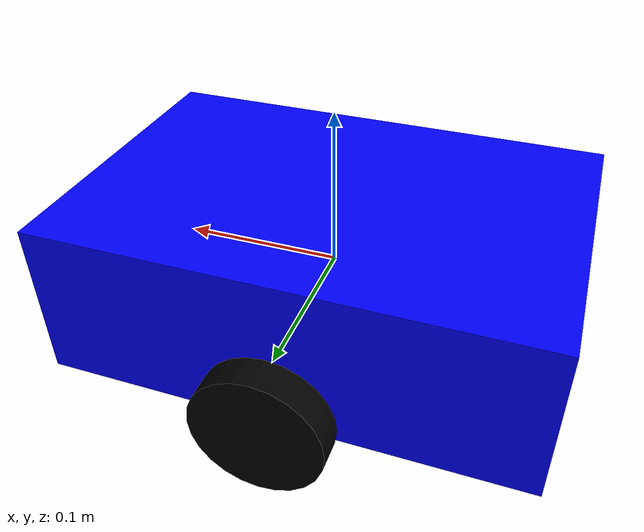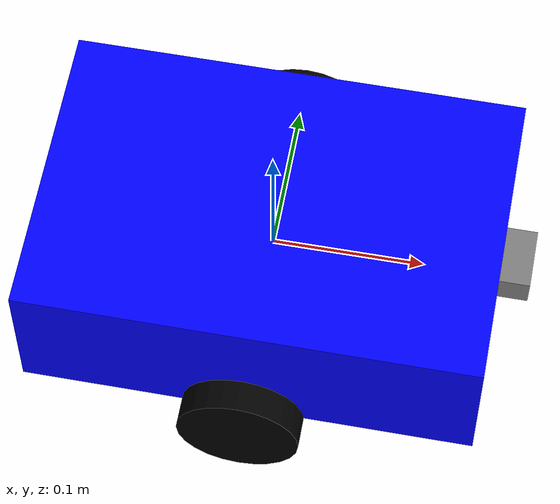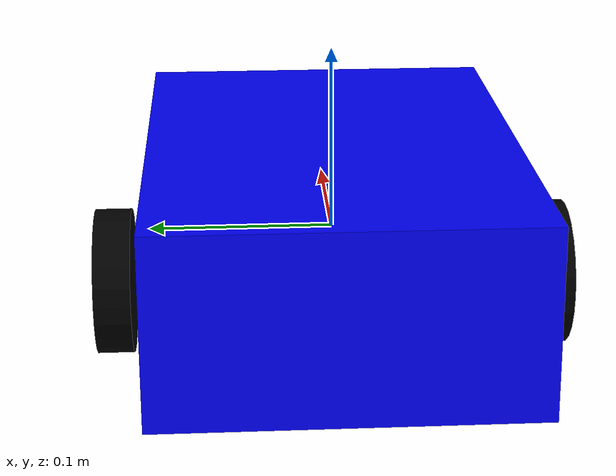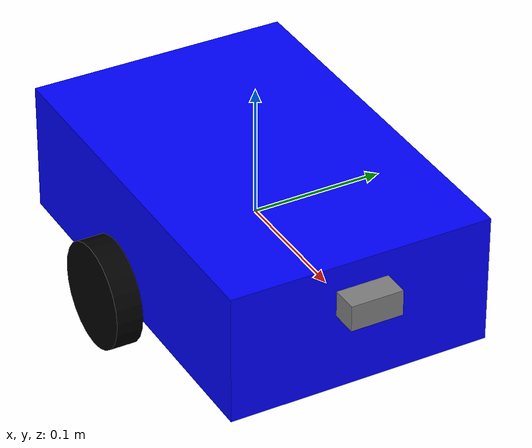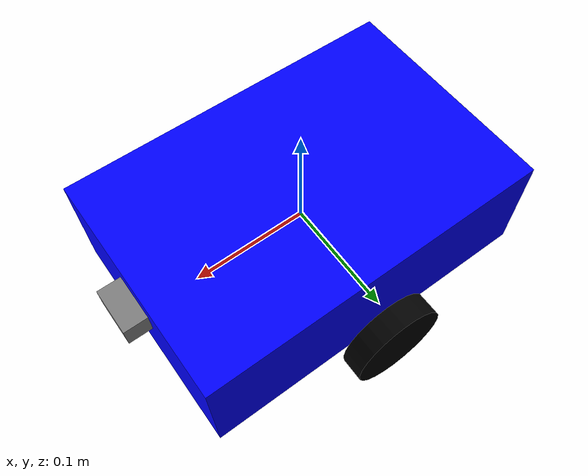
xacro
<?xml version="1.0"?>
<robot name="diff_robot" xmlns:xacro="http://www.ros.org/wiki/xacro">

  <!-- Base link -->
  <link name="base_link">
    <visual>
      <geometry><box size="0.3 0.2 0.1"/></geometry>
      <material name="blue"><color rgba="0 0 1 1"/></material>
    </visual>
    <collision>
      <geometry><box size="0.3 0.2 0.1"/></geometry>
    </collision>
    <inertial>
      <mass value="1.0"/>
      <inertia ixx="0.01" iyy="0.01" izz="0.01" ixy="0" ixz="0" iyz="0"/>
    </inertial>
  </link>

  <!-- Left wheel -->
  <link name="left_wheel">
    <visual>
      <geometry><cylinder radius="0.04" length="0.02"/></geometry>
      <material name="black"><color rgba="0 0 0 1"/></material>
    </visual>
    <collision>
      <geometry><cylinder radius="0.04" length="0.02"/></geometry>
    </collision>
    <inertial>
      <mass value="0.1"/>
      <inertia ixx="0.001" iyy="0.001" izz="0.001" ixy="0" ixz="0" iyz="0"/>
    </inertial>
  </link>

  <joint name="left_wheel_joint" type="continuous">
    <parent link="base_link"/>
    <child link="left_wheel"/>
    <origin xyz="0 0.12 -0.03" rpy="-1.5707 0 0"/>
    <axis xyz="0 0 1"/>
  </joint>

  <!-- Right wheel -->
  <link name="right_wheel">
    <visual>
      <geometry><cylinder radius="0.04" length="0.02"/></geometry>
      <material name="black"><color rgba="0 0 0 1"/></material>
    </visual>
    <collision>
      <geometry><cylinder radius="0.04" length="0.02"/></geometry>
    </collision>
    <inertial>
      <mass value="0.1"/>
      <inertia ixx="0.001" iyy="0.001" izz="0.001" ixy="0" ixz="0" iyz="0"/>
    </inertial>
  </link>

  <joint name="right_wheel_joint" type="continuous">
    <parent link="base_link"/>
    <child link="right_wheel"/>
    <origin xyz="0 -0.12 -0.03" rpy="-1.5707 0 0"/>
    <axis xyz="0 0 1"/>
  </joint>

  <!-- Caster wheel -->
  <link name="caster_wheel">
    <visual>
      <geometry><sphere radius="0.02"/></geometry>
      <material name="gray"><color rgba="0.5 0.5 0.5 1"/></material>
    </visual>
    <collision>
      <geometry><sphere radius="0.02"/></geometry>
    </collision>
    <inertial>
      <mass value="0.05"/>
      <inertia ixx="0.0001" iyy="0.0001" izz="0.0001" ixy="0" ixz="0" iyz="0"/>
    </inertial>
  </link>

  <joint name="caster_joint" type="fixed">
    <parent link="base_link"/>
    <child link="caster_wheel"/>
    <origin xyz="-0.1 0 -0.05"/>
  </joint>

  <!-- Ultrasonic sensor link -->
  <link name="ultrasonic_link">
    <visual>
      <geometry><box size="0.02 0.04 0.02"/></geometry>
      <material name="gray"><color rgba="0.5 0.5 0.5 1"/></material>
    </visual>
  </link>

  <joint name="ultrasonic_joint" type="fixed">
    <parent link="base_link"/>
    <child link="ultrasonic_link"/>
    <origin xyz="0.16 0 0.02"/>
  </joint>

  <!-- Gazebo differential drive plugin -->
  <gazebo>
    <plugin filename="gz-sim-diff-drive-system"
            name="gz::sim::systems::DiffDrive">
      <left_joint>left_wheel_joint</left_joint>
      <right_joint>right_wheel_joint</right_joint>
      <wheel_separation>0.24</wheel_separation>
      <wheel_radius>0.04</wheel_radius>
      <topic>cmd_vel</topic>
      <odom_topic>odom</odom_topic>
      <frame_id>odom</frame_id>
      <child_frame_id>base_link</child_frame_id>
    </plugin>
  </gazebo>

  <!-- Ultrasonic sensor plugin (using ray sensor) -->
  <gazebo reference="ultrasonic_link">
    <sensor name="ultrasonic" type="gpu_lidar">
      <always_on>true</always_on>
      <visualize>true</visualize>
      <update_rate>10</update_rate>
      <topic>ultrasonic_raw</topic>
      <gz_frame_id>ultrasonic_link</gz_frame_id>
      <lidar>
        <scan>
          <horizontal>
            <samples>1</samples>
            <resolution>1</resolution>
            <min_angle>0</min_angle>
            <max_angle>0</max_angle>
          </horizontal>
          <vertical>
            <samples>1</samples>
            <resolution>1</resolution>
            <min_angle>0</min_angle>
            <max_angle>0</max_angle>
          </vertical>
        </scan>
        <range>
          <min>0.02</min>
          <max>4.0</max>
          <resolution>0.01</resolution>
        </range>
      </lidar>
    </sensor>
  </gazebo>

  <!-- Gazebo colors -->
  <gazebo reference="base_link">
    <material>Gazebo/Blue</material>
  </gazebo>
  <gazebo reference="left_wheel">
    <material>Gazebo/Black</material>
  </gazebo>
  <gazebo reference="right_wheel">
    <material>Gazebo/Black</material>
  </gazebo>

</robot>
